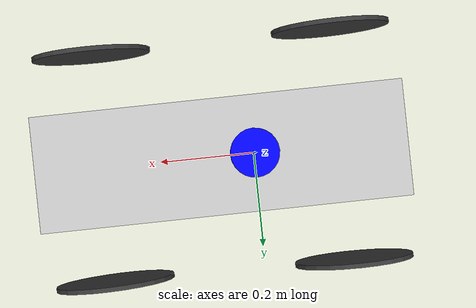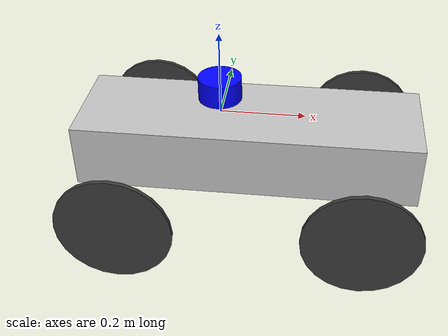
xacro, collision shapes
<?xml version="1.0"?>
<robot xmlns:xacro="http://wiki.ros.org/xacro" name="ur_softclaw">
    <xacro:include filename="$(find hunter_se_description)/urdf/hunter_se_macro.xacro"/>
    <xacro:include filename="$(find hunter_se_description)/urdf/hunter_hw_interface.xacro"/>
    <xacro:include filename="$(find hunter_se_description)/urdf/lidar_sensor.xacro"/>
    <xacro:include filename="$(find hunter_se_description)/urdf/imu_sensor.xacro"/>
    <xacro:arg name="tf_prefix" default=""/>
    <xacro:arg name="simulation" default="true"/>

    <xacro:hunter_se tf_prefix="$(arg tf_prefix)" simulation="$(arg simulation)"/>
    <xacro:hunter_se_hw_int tf_prefix="$(arg tf_prefix)" simulation="$(arg simulation)"/>
    <xacro:lidar_sensor tf_prefix="$(arg tf_prefix)"/>
    <xacro:imu_sensor tf_prefix="$(arg tf_prefix)"/>
</robot>

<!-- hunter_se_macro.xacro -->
<robot xmlns:xacro="http://wiki.ros.org/xacro" name="hunter_se">

    <xacro:macro name="wheels_collision" params="
    mu
    slip
    ">
        <surface>
            <friction>
                <ode>
                    <mu>
                        ${mu}
                    </mu>
                    <mu2>
                        0.0
                    </mu2>
                    <slip1>
                        ${slip}
                    </slip1>
                    <slip2>
                        0.0
                    </slip2>

                </ode>
            </friction>
        </surface>
        <contact>
            <ode>
                <kp>10000</kp>
                <kd>1</kd>
            </ode>
        </contact>
    </xacro:macro>

    <xacro:macro name="hunter_se" params="
    tf_prefix
    simulation=true
    ">
        <xacro:if value="${tf_prefix == ''}">
            <xacro:property name="joint_prefix" value=""/>
        </xacro:if>
        <xacro:unless value="${tf_prefix == ''}">
            <xacro:property name="joint_prefix" value="${tf_prefix}/"/>
        </xacro:unless>
        <link name="${joint_prefix}base_link">
            <inertial>
                <origin
                    xyz="0.0374140021041951 -0.000373005187591258 -0.0771282894414029"
                    rpy="0 0 0" />
                <mass
                    value="500.73" />
                <inertia
                    ixx="0.123215829336501"
                    ixy="-2.51201031615063E-06"
                    ixz="0.00480100638469038"
                    iyy="0.219144715482931"
                    iyz="-1.0329581476775E-05"
                    izz="0.313606030126045" />
            </inertial>
            <visual>
                <origin
                    xyz="0 0 0"
                    rpy="0 0 0" />
                <geometry>
                    <mesh
                    filename="package://hunter_se_description/meshes/base_link.STL" />
                </geometry>
                <material
                    name="">
                    <color
                    rgba="0.752941176470588 0.752941176470588 0.752941176470588 1" />
                </material>
            </visual>
            <collision>
                <origin
                    xyz="0.07 0 -0.07"
                    rpy="0 0 0" />
                <geometry>
                    <box size="0.8 0.25 0.15"/>
                </geometry>
            </collision>
        </link>
         <link name="${joint_prefix}fr_steer_left_link">
            <inertial>
                <origin
                    xyz="-0.0002776492198312 0.0163539773588368 4.97346169803237E-09"
                    rpy="0 0 0" />
                <mass
                    value="3.149" />
                <inertia
                    ixx="0.0222"
                    ixy="0.0"
                    ixz="0.0"
                    iyy="0.0222"
                    iyz="0.0"
                    izz="0.0378075" />
            </inertial>
            <visual>
                <origin
                    xyz="0 0 0"
                    rpy="0 0 0" />
                <geometry>
                    <box size="0.001 0.001 0.001"/>
                </geometry>
                <material
                    name="">
                    <color
                    rgba="0.223529411764706 0.223529411764706 0.223529411764706 1" />
                </material>
            </visual>
            <collision>
                <origin
                    xyz="0 0 0"
                    rpy="0 0 0" />
                <geometry>
                    <box size="0.001 0.001 0.001"/>
                </geometry>
            </collision>
        </link>
        <joint name="${joint_prefix}fr_steer_left_joint" type="revolute">
            <origin
                xyz="0.34058 0.24619 -0.1535"
                rpy="0 0 0" />
            <parent link="${joint_prefix}base_link" />
            <child link="${joint_prefix}fr_steer_left_link" />
            <axis xyz="0 0 1" />
            <limit
                lower="-0.69"
                upper="0.69"
                effort="100"
                velocity="10.0" />
        </joint>
        <link name="${joint_prefix}fr_left_link">
            <inertial>
                <origin
                    xyz="-3.5837499634539E-10 4.97346158701006E-09 -0.016356334080185"
                    rpy="0 0 0" />
                <mass
                    value="3.149" />
                <inertia
                    ixx="0.0222"
                    ixy="0.0"
                    ixz="0.0"
                    iyy="0.0222"
                    iyz="0.0"
                    izz="0.0378075" />
            </inertial>
            <visual>
                <origin
                    xyz="0 0 0"
                    rpy="0 0 0" />
                <geometry>
                    <mesh
                    filename="package://hunter_se_description/meshes/fr_left_link.STL" />
                </geometry>
                <material
                    name="">
                    <color
                    rgba="0.223529411764706 0.223529411764706 0.223529411764706 1" />
                </material>
            </visual>
            <collision>
                <origin
                    xyz="0 0 -0.015"
                    rpy="0 0 0" />
                <geometry>
                    <cylinder length="0.01" radius="0.135" />
                </geometry>
                <xacro:wheels_collision mu="100.0" slip="1.0"/>
            </collision>
        </link>
        <joint name="${joint_prefix}fr_left_joint" type="continuous">
            <origin xyz="0 0 0" rpy="1.5708 0 0.016976" />
            <parent link="${joint_prefix}fr_steer_left_link" />
            <child link="${joint_prefix}fr_left_link" />
            <axis xyz="0 0 -1" />
            <dynamics damping="0.0" friction="15"/>
        </joint>
        <link name="${joint_prefix}fr_steer_right_link">
            <inertial>
                <origin
                    xyz="0.000274981985673328 -0.0163540222836661 -3.24802407192237E-11"
                    rpy="0 0 0" />
                <mass
                    value="3.149" />
                <inertia
                    ixx="0.0222"
                    ixy="0.0"
                    ixz="0.0"
                    iyy="0.0222"
                    iyz="0.0"
                    izz="0.0378075" />
            </inertial>
            <visual>
                <origin
                    xyz="0 0 0"
                    rpy="0 0 0" />
                <geometry>
                    <box size="0.001 0.001 0.001"/>
                </geometry>
                <material
                    name="">
                    <color
                    rgba="0.223529411764706 0.223529411764706 0.223529411764706 1" />
                </material>
            </visual>
            <collision>
                <origin
                    xyz="0 0 0"
                    rpy="0 0 0" />
                <geometry>
                    <box size="0.001 0.001 0.001"/>
                </geometry>
            </collision>
        </link>
        <joint name="${joint_prefix}fr_steer_right_joint" type="revolute">
            <origin xyz="0.34219 -0.24619 -0.1535" rpy="0 0 0" />
            <parent link="${joint_prefix}base_link" />
            <child link="${joint_prefix}fr_steer_right_link" />
            <axis xyz="0 0 1" />
            <limit lower="-0.69" upper="0.69" effort="100.0" velocity="10.0" />
        </joint>
        <link name="${joint_prefix}fr_right_link">
            <inertial>
                <origin
                    xyz="0.00027498198567355 3.24801296969213E-11 -0.0163540222836661"
                    rpy="0 0 0" />
                <mass
                    value="3.149" />
                <inertia
                    ixx="0.0222"
                    ixy="0.0"
                    ixz="0.0"
                    iyy="0.0222"
                    iyz="0.0"
                    izz="0.0378075" />
            </inertial>
            <visual>
                <origin
                    xyz="0 0 0"
                    rpy="0 0 0" />
                <geometry>
                    <mesh
                    filename="package://hunter_se_description/meshes/fr_right_link.STL" />
                </geometry>
                <material
                    name="">
                    <color
                    rgba="0.223529411764706 0.223529411764706 0.223529411764706 1" />
                </material>
            </visual>
            <collision>
                <origin
                    xyz="0 0 -0.015"
                    rpy="0 0 0" />
                <geometry>
                    <cylinder length="0.01" radius="0.135" />
                </geometry>
                 <xacro:wheels_collision mu="100.0" slip="1.0"/>
            </collision>
        </link>
        <joint name="${joint_prefix}fr_right_joint" type="continuous">
            <origin
            xyz="0 0 0"
            rpy="-1.5708 0 0" />
            <parent
            link="${joint_prefix}fr_steer_right_link" />
            <child
            link="${joint_prefix}fr_right_link" />
            <axis
            xyz="0 0 1" />
            <dynamics damping="0.0" friction="15"/>
        </joint>
        <link name="${joint_prefix}re_left_link">
            <inertial>
                <origin
                    xyz="1.245E-09 1.7252E-06 -0.010284"
                    rpy="0 0 0" />
                <mass
                    value="3.149" />
                <inertia
                    ixx="0.0222"
                    ixy="0.0"
                    ixz="0.0"
                    iyy="0.0222"
                    iyz="0.0"
                    izz="0.0378075" />
                </inertial>
            <visual>
                <origin
                    xyz="0 0 0"
                    rpy="0 0 0" />
                <geometry>
                    <mesh
                    filename="package://hunter_se_description/meshes/re_left_link.STL" />
                </geometry>
                <material
                    name="">
                    <color
                    rgba="0.223529411764706 0.223529411764706 0.223529411764706 1" />
                </material>
            </visual>
            <collision>
                <origin
                    xyz="0 0 -0.015"
                    rpy="0 0 0" />
                <geometry>
                    <cylinder length="0.01" radius="0.135" />
                </geometry>
                <xacro:wheels_collision mu="100.0" slip="1.0"/>
            </collision>
        </link>
        <joint
            name="${joint_prefix}re_left_joint"
            type="continuous">
            <origin
            xyz="-0.2078 0.252 -0.158"
            rpy="1.5708 0 0" />
            <parent
            link="${joint_prefix}base_link" />
            <child
            link="${joint_prefix}re_left_link" />
            <axis
            xyz="0 0 -1" />
            <dynamics damping="0.0" friction="15"/>
        </joint>
        <link name="${joint_prefix}re_right_link">
            <inertial>
                <origin
                    xyz="0 0 0"
                    rpy="0 0 0" />
                <mass
                    value="3.149" />
                <inertia
                    ixx="0.0222"
                    ixy="0.0"
                    ixz="0.0"
                    iyy="0.0222"
                    iyz="0.0"
                    izz="0.0378075" />
            </inertial>
            <visual>
                <origin
                    xyz="0 0 0"
                    rpy="0 0 0" />
                <geometry>
                    <mesh
                    filename="package://hunter_se_description/meshes/re_right_link.STL" />
                </geometry>
                <material
                    name="">
                    <color
                    rgba="0.223529411764706 0.223529411764706 0.223529411764706 1" />
                </material>
            </visual>
                <collision>
                <origin
                    xyz="0 0 -0.015"
                    rpy="0 0 0" />
                <geometry>
                    <cylinder length="0.01" radius="0.135" />
                </geometry>
                 <xacro:wheels_collision mu="100.0" slip="1.0"/>
            </collision>
        </link>
        <joint name="${joint_prefix}re_right_joint" type="continuous">
            <origin
            xyz="-0.2078 -0.252 -0.158"
            rpy="-1.5708 0 0" />
            <parent
            link="${joint_prefix}base_link" />
            <child
            link="${joint_prefix}re_right_link" />
            <axis
            xyz="0 0 1" />
            <dynamics damping="0.0" friction="15"/>
        </joint>

        <link name="${joint_prefix}front_steer_link">
            <inertial>
                <origin
                    xyz="0.049836 8.1046E-15 0.017912"
                    rpy="0 0 0" />
                <mass
                    value="0.0049179" />
                <inertia
                    ixx="1.6846E-07"
                    ixy="7.6396E-23"
                    ixz="-1.0974E-08"
                    iyy="7.549E-07"
                    iyz="-1.8957E-22"
                    izz="7.334E-07" />
            </inertial>
            <visual>
                <origin
                    xyz="0 0 0"
                    rpy="0 0 0" />
                <geometry>
                <cylinder length="0.001" radius="0.005"/>
                </geometry>
                <material
                    name="">
                    <color
                    rgba="0.223529411764706 0.223529411764706 0.223529411764706 1" />
                </material>
            </visual>
            <collision>
                <origin
                    xyz="0 0 0"
                    rpy="0 0 0" />
                <geometry>
                <cylinder length="0.001" radius="0.005"/>
                </geometry>
            </collision>
        </link>
        <joint name="${joint_prefix}front_steer_joint" type="revolute">
            <origin
            xyz="0.40792 -1.1431E-05 -0.085581"
            rpy="0 0 0" />
            <parent
            link="${joint_prefix}base_link" />
            <child
            link="${joint_prefix}front_steer_link" />
            <axis
            xyz="0 0 1" />
            <limit
            lower="-0.72"
            upper="0.72"
            effort="0"
            velocity="0" />
        </joint>
        <link name="${joint_prefix}rear_wheel_link">
            <inertial>
                <origin
                    xyz="-0.02 0.0031269 -0.12735"
                    rpy="0 0 0" />
                <mass
                    value="0.0049179" />
                <inertia
                    ixx="1.1821E-06"
                    ixy="9.6965E-13"
                    ixz="-3.1553E-12"
                    iyy="9.5276E-07"
                    iyz="1.2428E-08"
                    izz="1.0913E-06" />
                </inertial>
            <visual>
                <origin
                    xyz="0 0 0"
                    rpy="0 0 0" />
                <geometry>
                <cylinder length="0.001" radius="0.005"/>
                </geometry>
                <material
                    name="">
                    <color
                    rgba="0.223529411764706 0.223529411764706 0.223529411764706 1" />
                </material>
            </visual>
                <collision>
                <origin
                    xyz="0 0 0"
                    rpy="0 0 0" />
                <geometry>
                <cylinder length="0.001" radius="0.005"/>
                </geometry>
            </collision>
        </link>
        <joint name="${joint_prefix}rear_wheel_joint" type="continuous">
            <origin
            xyz="-0.30408 -1.1431E-05 -0.085581"
            rpy="0.0032313 0 0" />
            <parent
            link="${joint_prefix}base_link" />
            <child
            link="${joint_prefix}rear_wheel_link" />
            <axis
            xyz="0 0 1" />
        </joint>

    </xacro:macro>
</robot>

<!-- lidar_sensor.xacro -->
<robot xmlns:xacro="http://ros.org/wiki/xacro">

    <xacro:property name="PI" value="3.141592" />

    <xacro:property name="b2l_x" value="0.0" />
    <xacro:property name="b2l_y" value="0.0" />
    <xacro:property name="b2l_z" value="0.065" />
    <xacro:property name="b2l_R" value="0.0" />
    <xacro:property name="b2l_P" value="0.0" />
    <xacro:property name="b2l_Y" value="0.0" />
    <xacro:property name="lidar_mass" value="0.125" />
    <xacro:property name="lidar_len_rad" value="0.0508" />
    <xacro:property name="lidar_len_h" value="0.055" />
    <xacro:include filename="$(find hunter_se_description)/urdf/base_inertia.xacro" />

    <xacro:macro name="lidar_sensor" params="tf_prefix">

        <xacro:if value="${tf_prefix == ''}">
            <xacro:property name="joint_prefix" value=""/>
        </xacro:if>
        <xacro:unless value="${tf_prefix == ''}">
            <xacro:property name="joint_prefix" value="${tf_prefix}/"/>
        </xacro:unless>
        <joint name="base2lidar" type="fixed">
            <parent link="${joint_prefix}base_link"/>
            <child link="${joint_prefix}lidar_link"/>
            <origin xyz="${b2l_x} ${b2l_y} ${b2l_z}" rpy="${b2l_R} ${b2l_P} ${b2l_Y}"/>
        </joint>
        <link name="${joint_prefix}lidar_link">
            <collision>
                <origin xyz="0 0 0" rpy="0 0 0"/>
                <geometry>
                    <cylinder radius="${lidar_len_rad}" length="${lidar_len_h}"/>
                </geometry>
            </collision>

            <visual>
                <origin xyz="0 0 0" rpy="0 0 0"/>
                <geometry>
                    <cylinder radius="${lidar_len_rad}" length="${lidar_len_h}"/>
                </geometry>
                 <material
                    name="">
                    <color
                    rgba="0.0 0.0 1 1" />
                </material>
            </visual>

            <xacro:cylinder_inertia m="${lidar_mass}" r="${lidar_len_rad}" h="${lidar_len_h}" dir="z"/>

        </link>
        <gazebo reference="${joint_prefix}lidar_link">
            <sensor name="RGLsensor" type="custom">
                <plugin filename="RGLServerPluginInstance" name="rgl::RGLServerPluginInstance">
                    <range>
                    <min>0</min>
                    <max>100</max>
                    </range>
                    <update_rate>10</update_rate>
                    <update_on_paused_sim>false</update_on_paused_sim>
                    <topic>${joint_prefix}rgl_lidar</topic>
                    <frame>${joint_prefix}lidar_link</frame>
                    <pattern_preset>Puck</pattern_preset>
                </plugin>
            </sensor>
        </gazebo>

    </xacro:macro>

</robot>

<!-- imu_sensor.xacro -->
<robot xmlns:xacro="http://ros.org/wiki/xacro">

    <xacro:property name="PI" value="3.141592" />
    <xacro:property name="b2i_x" value="0.0" />
    <xacro:property name="b2i_y" value="0.0" />
    <xacro:property name="b2i_z" value="0.0" />
    <xacro:property name="b2i_R" value="0.0" />
    <xacro:property name="b2i_P" value="0.0" />
    <xacro:property name="b2i_Y" value="0.0" />
    <xacro:property name="imu_mass" value="0.01" />
    <xacro:property name="imu_len_x" value="0.01" />
    <xacro:property name="imu_len_y" value="0.01" />
    <xacro:property name="imu_len_z" value="0.01" />

    <xacro:include filename="$(find hunter_se_description)/urdf/base_inertia.xacro" />

    <xacro:macro name="imu_sensor" params="tf_prefix">
         <xacro:if value="${tf_prefix == ''}">
            <xacro:property name="joint_prefix" value=""/>
        </xacro:if>
        <xacro:unless value="${tf_prefix == ''}">
            <xacro:property name="joint_prefix" value="${tf_prefix}/"/>
        </xacro:unless>
        <joint name="base2imu" type="fixed">
            <parent link="${joint_prefix}base_link"/>
            <child link="${joint_prefix}imu_link"/>
            <origin xyz="${b2i_x} ${b2i_y} ${b2i_z}" rpy="${b2i_R} ${b2i_P} ${b2i_Y}"/>
        </joint>
        <link name="${joint_prefix}imu_link">
            <visual>
                <geometry>
                    <box size="${imu_len_x} ${imu_len_y} ${imu_len_z}"/>
                </geometry>

            </visual>

            <collision>
                <geometry>
                    <box size="${imu_len_x} ${imu_len_y} ${imu_len_z}"/>
                </geometry>
            </collision>

            <xacro:box_inertia m="${imu_mass}" w="${imu_len_x}" d="${imu_len_y}" h="${imu_len_z}"/>

        </link>
        <gazebo reference="${joint_prefix}imu_link">
            <sensor name="imu_sensor" type="imu">
                    <ignition_frame_id>${joint_prefix}imu_link</ignition_frame_id>
                    <always_on>1</always_on>
                    <update_rate>500</update_rate>
                    <visualize>true</visualize>
                    <topic>${joint_prefix}imu</topic>
                    <plugin filename="libignition-gazebo-imu-system.so"
                            name="ignition::gazebo::systems::Imu">
                    </plugin>

                    <imu>
                        <angular_velocity>
                            <x>
                                <noise type="gaussian">
                                <mean>0.0</mean>
                                <stddev>2e-4</stddev>
                                <bias_mean>0.0000075</bias_mean>
                                <bias_stddev>0.0000008</bias_stddev>
                                </noise>
                            </x>
                            <y>
                                <noise type="gaussian">
                                <mean>0.0</mean>
                                <stddev>2e-4</stddev>
                                <bias_mean>0.0000075</bias_mean>
                                <bias_stddev>0.0000008</bias_stddev>
                                </noise>
                            </y>
                            <z>
                                <noise type="gaussian">
                                <mean>0.0</mean>
                                <stddev>2e-4</stddev>
                                <bias_mean>0.0000075</bias_mean>
                                <bias_stddev>0.0000008</bias_stddev>
                                </noise>
                            </z>
                        </angular_velocity>
                        <linear_acceleration>
                            <x>
                                <noise type="gaussian">
                                <mean>0.0</mean>
                                <stddev>1.7e-2</stddev>
                                <bias_mean>0.1</bias_mean>
                                <bias_stddev>0.001</bias_stddev>
                                </noise>
                            </x>
                            <y>
                                <noise type="gaussian">
                                <mean>0.0</mean>
                                <stddev>1.7e-2</stddev>
                                <bias_mean>0.1</bias_mean>
                                <bias_stddev>0.001</bias_stddev>
                                </noise>
                            </y>
                            <z>
                                <noise type="gaussian">
                                <mean>0.0</mean>
                                <stddev>1.7e-2</stddev>
                                <bias_mean>0.1</bias_mean>
                                <bias_stddev>0.001</bias_stddev>
                                </noise>
                            </z>
                        </linear_acceleration>
                    </imu>
                </sensor>
        </gazebo>
    </xacro:macro>

</robot>
